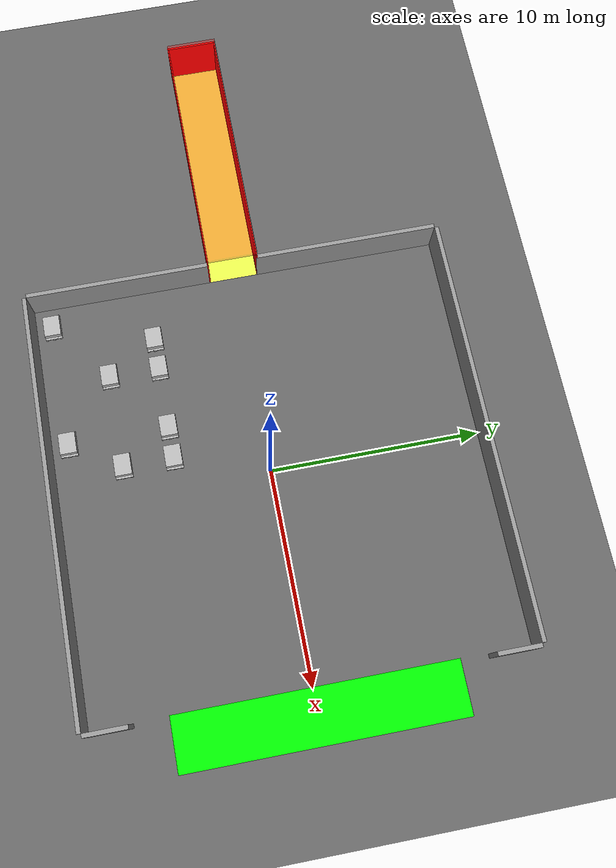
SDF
<sdf version="1.7">
 <world name="factory_w_pallets_ode">
  <atmosphere type="adiabatic"/>
  <gravity>0 0 -9.8</gravity>
  <magnetic_field>6e-06 2.3e-05 -4.2e-05</magnetic_field>
  <scene>
   <ambient>0.4 0.4 0.4 1</ambient>
   <background>0.7 0.7 0.7 1</background>
   <shadows>false</shadows>
   <grid>true</grid>
   <origin_visual>true</origin_visual>
  </scene>
  <physics name="ode_physics" default="true" type="ode">
   <max_step_size>0.004</max_step_size>
   <real_time_update_rate>250</real_time_update_rate>
   <real_time_factor>1.0</real_time_factor>
   <ode>
    <solver><type>quick</type><iters>20</iters><sor>1.0</sor></solver>
    <constraints>
     <cfm>0.0</cfm>
     <erp>0.2</erp>
     <contact_max_correcting_vel>100.0</contact_max_correcting_vel>
     <contact_surface_layer>0.0</contact_surface_layer>
    </constraints>
   </ode>
  </physics>
  <plugin filename="gz-sim-contact-system" name="gz::sim::systems::Contact"/>
  <plugin filename="gz-sim-imu-system" name="gz::sim::systems::Imu"/>
  <plugin filename="gz-sim-physics-system" name="gz::sim::systems::Physics">
   <engine><filename>gz-physics6-ode-plugin</filename></engine>
  </plugin>
  <plugin filename="gz-sim-scene-broadcaster-system" name="gz::sim::systems::SceneBroadcaster"/>
  <plugin filename="gz-sim-user-commands-system" name="gz::sim::systems::UserCommands"/>
  <plugin filename="gz-sim-sensors-system" name="gz::sim::systems::Sensors">
   <render_engine>ogre2</render_engine>
  </plugin>
  <light name="sun" type="directional">
   <pose>0 0 10 0 -0.5 0</pose>
   <diffuse>0.8 0.8 0.8 1</diffuse>
   <specular>0.2 0.2 0.2 1</specular>
   <attenuation>
    <range>1000</range>
    <constant>0.9</constant>
    <linear>0.01</linear>
    <quadratic>0.001</quadratic>
   </attenuation>
   <direction>-0.5 0.1 -0.9</direction>
  </light>
  <model name="ground_plane">
   <static>true</static>
   <link name="link">
    <visual name="visual">
     <geometry><plane><normal>0 0 1</normal><size>100 100</size></plane></geometry>
     <material>
      <ambient>0.4 0.4 0.4 1</ambient>
      <diffuse>0.4 0.4 0.4 1</diffuse>
      <specular>0.05 0.05 0.05 1</specular>
     </material>
     <cast_shadows>0</cast_shadows>
    </visual>
    <collision name="collision">
     <geometry><plane><normal>0 0 1</normal><size>100 100</size></plane></geometry>
    </collision>
   </link>
  </model>
  <model name="wall_up">
   <static>true</static>
   <link name="link">
    <visual name="visual">
     <geometry><box><size>20 0.20 2</size></box></geometry>
     <pose>0 0 1 0 0 0</pose>
     <material><ambient>0.6 0.6 0.6 1</ambient><diffuse>0.6 0.6 0.6 1</diffuse></material>
    </visual>
    <collision name="collision">
     <geometry><box><size>20 0.20 2</size></box></geometry>
     <pose>0 0 1 0 0 0</pose>
    </collision>
   </link>
   <pose relative_to="ground_plane">0 10.1 0 0 0 0</pose>
  </model>
  <model name="wall_down">
   <static>true</static>
   <link name="link">
    <visual name="visual">
     <geometry><box><size>20 0.20 2</size></box></geometry>
     <pose>0 0 1 0 0 0</pose>
     <material><ambient>0.6 0.6 0.6 1</ambient><diffuse>0.6 0.6 0.6 1</diffuse></material>
    </visual>
    <collision name="collision">
     <geometry><box><size>20 0.20 2</size></box></geometry>
     <pose>0 0 1 0 0 0</pose>
    </collision>
   </link>
   <pose relative_to="ground_plane">0 -10.1 0 0 0 0</pose>
  </model>
  <model name="wall_left_up">
   <static>true</static>
   <link name="link">
    <visual name="visual">
     <geometry><box><size>8.832 0.2 2</size></box></geometry>
     <pose>0 0 1 0 0 0</pose>
     <material><ambient>0.6 0.6 0.6 1</ambient><diffuse>0.6 0.6 0.6 1</diffuse></material>
    </visual>
    <collision name="collision">
     <geometry><box><size>8.832 0.2 2</size></box></geometry>
     <pose>0 0 1 0 0 0</pose>
    </collision>
   </link>
   <pose relative_to="ground_plane">-10.1 5.584 0 0 0 1.5708</pose>
  </model>
  <model name="wall_left_down">
   <static>true</static>
   <link name="link">
    <visual name="visual">
     <geometry><box><size>8.832 0.20 2</size></box></geometry>
     <pose>0 0 1 0 0 0</pose>
     <material><ambient>0.6 0.6 0.6 1</ambient><diffuse>0.6 0.6 0.6 1</diffuse></material>
    </visual>
    <collision name="collision">
     <geometry><box><size>8.832 0.20 2</size></box></geometry>
     <pose>0 0 1 0 0 0</pose>
    </collision>
   </link>
   <pose relative_to="ground_plane">-10.1 -5.584 0 0 0 1.5708</pose>
  </model>
  <model name="wall_right_up">
   <static>true</static>
   <link name="link">
    <visual name="visual">
     <geometry><box><size>2 0.20 2</size></box></geometry>
     <pose>0 0 1 0 0 0</pose>
     <material><ambient>0.6 0.6 0.6 1</ambient><diffuse>0.6 0.6 0.6 1</diffuse></material>
    </visual>
    <collision name="collision">
     <geometry><box><size>2 0.20 2</size></box></geometry>
     <pose>0 0 1 0 0 0</pose>
    </collision>
   </link>
   <pose relative_to="ground_plane">10.1 9 0 0 0 1.5708</pose>
  </model>
  <model name="wall_right_down">
   <static>true</static>
   <link name="link">
    <visual name="visual">
     <geometry><box><size>2 0.20 2</size></box></geometry>
     <pose>0 0 1 0 0 0</pose>
     <material><ambient>0.6 0.6 0.6 1</ambient><diffuse>0.6 0.6 0.6 1</diffuse></material>
    </visual>
    <collision name="collision">
     <geometry><box><size>2 0.20 2</size></box></geometry>
     <pose>0 0 1 0 0 0</pose>
    </collision>
   </link>
   <pose relative_to="ground_plane">10.1 -9 0 0 0 1.5708</pose>
  </model>
  <include>
   <uri>model://std_cargo_container_40ft</uri>
   <pose relative_to="ground_plane">-16.095 0 0 0 0 3.141592654</pose>
  </include>
  <include>
   <uri>model://std_cargo_container_40ft_right_side_removed_on_wheels</uri>
   <pose relative_to="ground_plane">11.168 0 0 0 0 -1.5708</pose>
  </include>
  <include>
   <uri>model://euro_pallet_w_boxes</uri>
   <pose relative_to="ground_plane">-9 -9.2 0 0 0 0</pose>
   <name>pallet_w_boxes_1_1</name>
  </include>
  <include>
   <uri>model://euro_pallet_w_boxes</uri>
   <pose relative_to="ground_plane">-3 -9.2 0 0 0 0</pose>
   <name>pallet_w_boxes_5_1</name>
  </include>
  <include>
   <uri>model://euro_pallet_w_boxes</uri>
   <pose relative_to="ground_plane">-6 -6.8 0 0 0 0</pose>
   <name>pallet_w_boxes_3_2</name>
  </include>
  <include>
   <uri>model://euro_pallet_w_boxes</uri>
   <pose relative_to="ground_plane">-1.5 -6.8 0 0 0 0</pose>
   <name>pallet_w_boxes_6_2</name>
  </include>
  <include>
   <uri>model://euro_pallet_w_boxes</uri>
   <pose relative_to="ground_plane">-7.5 -4.4 0 0 0 0</pose>
   <name>pallet_w_stacked_2_3</name>
  </include>
  <include>
   <uri>model://euro_pallet_w_boxes</uri>
   <pose relative_to="ground_plane">-6 -4.4 0 0 0 0</pose>
   <name>pallet_w_boxes_3_3</name>
  </include>
  <include>
   <uri>model://euro_pallet_w_boxes</uri>
   <pose relative_to="ground_plane">-3 -4.4 0 0 0 0</pose>
   <name>pallet_w_boxes_5_3</name>
  </include>
  <include>
   <uri>model://euro_pallet_w_boxes</uri>
   <pose relative_to="ground_plane">-1.5 -4.4 0 0 0 0</pose>
   <name>pallet_w_boxes_6_3</name>
  </include>
 </world>
</sdf>

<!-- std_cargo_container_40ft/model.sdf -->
<sdf version="1.7">
    <model name="std_cargo_container_40ft" canonical_link="container_link" placement_frame="container_link">
        <static>false</static>
        <self_collide>false</self_collide>

        <!--
        The container_link is at the center of the bottom face of the container.
        -->
        <link name="container_link">
            <visual name="floor_visual">
                <geometry>
                    <box>
                        <!--
                        sx = size_x_outer = 12.19 m
                        sy = size_y_outer = 2.44 m
                        sz = 0.005 m
                        -->
                        <size>12.19 2.44 0.005</size>
                    </box>
                </geometry>
                <!--
                pz = sz * 0.5 = 0.005 * 0.5 = 0.0025 m
                -->
                <pose>0 0 0.0025 0 0 0</pose>
                <material>
                    <ambient>0.9 1.0 0.3 1</ambient>
                    <diffuse>0.9 1.0 0.3 1</diffuse>
                    <specular>0.3 0.3 0.1 1</specular>
                </material>
            </visual>

            <visual name="left_wall_visual">
                <geometry>
                    <box>
                        <!--
                        sx = size_x_outer = 12.19 m
                        sy = diff_y * 0.5 = 0.11 * 0.5 = 0.055 m
                        sz = size_z_inner = 2.38 m
                        -->
                        <size>12.19 0.055 2.38</size>
                    </box>
                </geometry>
                <pose>0 1.1925 1.195 0 0 0</pose>
                <material>
                    <ambient>1 0 0 1</ambient>
                    <diffuse>1 0 0 1</diffuse>
                    <specular>0.2 0.2 0.2 1</specular>
                </material>
            </visual>

            <visual name="right_wall_visual">
                <geometry>
                    <!--
                    sx = size_x_outer = 12.19 m
                    sy = diff_y * 0.5 = 0.11 * 0.5 = 0.055 m
                    sz = size_z_inner = 2.38 m
                    -->
                    <box>
                        <size>12.19 0.055 2.38</size>
                    </box>
                </geometry>
                <pose>0 -1.1925 1.195 0 0 0</pose>
                <material>
                    <ambient>1 0 0 1</ambient>
                    <diffuse>1 0 0 1</diffuse>
                    <specular>0.2 0.2 0.2 1</specular>
                </material>
            </visual>

            <visual name="ceiling_visual">
                <geometry>
                    <!--
                    sx = size_x_outer = 12.19 m
                    sy = size_y_outer = 2.44 m
                    sz = diff_z - 0.005 = 0.21 - 0.005 = 0.205 m
                    -->
                    <box>
                        <size>12.19 2.44 0.205</size>
                    </box>
                </geometry>
                <!--
                pz = sz_floor + sz_wall + (sz * 0.5)  =
                   = 0.005 + 2.38 + (0.205 * 0.5) = 2.4875
                -->
                <pose>0 0 2.4875 0 0 0</pose>
                <material>
                    <ambient>1 0 0 0.3</ambient>
                    <diffuse>1 0 0 0.3</diffuse>
                    <specular>0.2 0.2 0.2 1</specular>
                </material>
            </visual>

            <visual name="front_wall_visual">
                <geometry>
                    <!--
                    sx = diff_x * 0.5 = 0.18 * 0.5 = 0.09 m
                    sy = size_y_inner = 2.33 m
                    sz = size_z_inner = 2.38 m
                    -->
                    <box>
                        <size>0.09 2.33 2.38</size>
                    </box>
                </geometry>
                <pose>6.050 0 1.195 0 0 0</pose>
                <material>
                    <ambient>1 0 0 1</ambient>
                    <diffuse>1 0 0 1</diffuse>
                    <specular>0.2 0.2 0.2 1</specular>
                </material>
            </visual>

            <collision name="floor_collision">
                <geometry>
                    <box>
                        <size>12.19 2.44 0.005</size>
                    </box>
                </geometry>
                <pose>0 0 0.0025 0 0 0</pose>
            </collision>

            <collision name="left_wall_collision">
                <geometry>
                    <box>
                        <size>12.19 0.055 2.38</size>
                    </box>
                </geometry>
                <pose>0 1.1925 1.195 0 0 0</pose>
            </collision>

            <collision name="right_wall_collision">
                <geometry>
                    <box>
                        <size>12.19 0.055 2.38</size>
                    </box>
                </geometry>
                <pose>0 -1.1925 1.195 0 0 0</pose>
            </collision>

            <collision name="ceiling_collision">
                <geometry>
                    <box>
                        <size>12.19 2.44 0.205</size>
                    </box>
                </geometry>
                <pose>0 0 2.4875 0 0 0</pose>
            </collision>

            <collision name="front_wall_collision">
                <geometry>
                    <box>
                        <size>0.09 2.33 2.38</size>
                    </box>
                </geometry>
                <pose>6.050 0 1.195 0 0 0</pose>
            </collision>

            <inertial>
                <mass>3701.0</mass>
                <inertia>
                    <ixx>3905.079308</ixx>
                    <ixy>0.0</ixy>
                    <ixz>0.0</ixz>
                    <iyy>47898.403683</iyy>
                    <iyz>0.0</iyz>
                    <izz>47665.703308</izz>
                </inertia>
                <pose>0 0 1.195 0 0 0</pose>
            </inertial>
            <pose>0 0 0 0 0 0</pose>
        </link>
    </model>
</sdf>

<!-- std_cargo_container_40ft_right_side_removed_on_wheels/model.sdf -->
<sdf version="1.7">
    <model name="std_cargo_container_40ft_right_side_removed_on_wheels" canonical_link="footprint_link" placement_frame="footprint_link">
        <static>false</static>
        <self_collide>false</self_collide>

        <link name="footprint_link">
            <inertial>
                <mass>0.001</mass>
                <inertia>
                    <ixx>1e-6</ixx>
                    <ixy>0</ixy>
                    <ixz>0</ixz>
                    <iyy>1e-6</iyy>
                    <iyz>0</iyz>
                    <izz>1e-6</izz>
                </inertia>
            </inertial>
        </link>

        <!--
        The link for the payload_chassis is at the center of the bottom face of the payload chassis.
        -->
        <link name="payload_chassis_link">
            <visual name="visual">
                <geometry>
                    <box>
                        <size>12.19 2.336 0.17</size>
                    </box>
                </geometry>
                <pose>0 0 0.085 0 0 0</pose>
                <material>
                    <ambient>0 0 0 1</ambient>
                    <diffuse>0 0 0 1</diffuse>
                    <specular>0.1 0.1 0.1 1</specular>
                </material>
            </visual>

            <collision name="collision">
                <geometry>
                    <box>
                        <size>12.19 2.336 0.17</size>
                    </box>
                </geometry>
                <pose>0 0 0.085 0 0 0</pose>
            </collision>

            <inertial>
                <mass>2800.0</mass>
                <inertia>
                    <ixx>1279.685</ixx>
                    <ixy>0.0</ixy>
                    <ixz>0.0</ixz>
                    <iyy>34678.405</iyy>
                    <iyz>0.0</iyz>
                    <izz>35945.605</izz>
                </inertia>
                <pose>0 0 0.085 0 0 0</pose>
            </inertial>

            <!--
            z = 2 * wheel_radius = 2 * 0.5 = 1 m
            -->
            <pose relative_to="footprint_link">0 0 1.0 0 0 0</pose>
        </link>

        <joint name="payload_chassis_frame_joint" type="fixed">
            <parent>footprint_link</parent>
            <child>payload_chassis_link</child>
            <pose relative_to="footprint_link">0 0 1.0 0 0 0</pose>
        </joint>

        <!--
        The container_link is at the center of the bottom face of the container.
        -->
        <link name="container_link">
            <visual name="floor_visual">
                <geometry>
                    <box>
                        <size>12.19 2.336 0.03</size>
                    </box>
                </geometry>
                <pose>0 0 0.015 0 0 0</pose>
                <material>
                    <ambient>0.9 1.0 0.3 1</ambient>
                    <diffuse>0.9 1.0 0.3 1</diffuse>
                    <specular>0.3 0.3 0.1 1</specular>
                </material>
            </visual>

            <visual name="left_wall_visual">
                <geometry>
                    <box>
                        <size>12.19 0.003 2.38</size>
                    </box>
                </geometry>
                <pose>0 1.1665 1.22 0 0 0</pose>
                <material>
                    <ambient>0 1 0 1</ambient>
                    <diffuse>0 1 0 1</diffuse>
                    <specular>0.2 0.2 0.2 1</specular>
                </material>
            </visual>

            <visual name="ceiling_visual">
                <geometry>
                    <box>
                        <size>12.19 2.336 0.003</size>
                    </box>
                </geometry>
                <pose>0 0 2.4115 0 0 0</pose>
                <material>
                    <ambient>0 1 0 1</ambient>
                    <diffuse>0 1 0 1</diffuse>
                    <specular>0.2 0.2 0.2 1</specular>
                </material>
            </visual>

            <visual name="front_wall_visual">
                <geometry>
                    <box>
                        <size>0.09 2.33 2.38</size>
                    </box>
                </geometry>
                <pose>6.050 0 1.22 0 0 0</pose>
                <material>
                    <ambient>0 1 0 1</ambient>
                    <diffuse>0 1 0 1</diffuse>
                    <specular>0.2 0.2 0.2 1</specular>
                </material>
            </visual>

            <visual name="back_wall_visual">
                <geometry>
                    <box>
                        <size>0.09 2.33 2.38</size>
                    </box>
                </geometry>
                <pose>-6.050 0 1.22 0 0 0</pose>
                <material>
                    <ambient>0 1 0 1</ambient>
                    <diffuse>0 1 0 1</diffuse>
                    <specular>0.2 0.2 0.2 1</specular>
                </material>
            </visual>

            <collision name="floor_collision">
                <geometry>
                    <box>
                        <size>12.19 2.336 0.03</size>
                    </box>
                </geometry>
                <pose>0 0 0.015 0 0 0</pose>
            </collision>

            <collision name="left_wall_collision">
                <geometry>
                    <box>
                        <size>12.19 0.003 2.38</size>
                    </box>
                </geometry>
                <pose>0 1.1665 1.22 0 0 0</pose>
            </collision>

            <collision name="ceiling_collision">
                <geometry>
                    <box>
                        <size>12.19 2.336 0.003</size>
                    </box>
                </geometry>
                <pose>0 0 2.4115 0 0 0</pose>
            </collision>

            <collision name="front_wall_collision">
                <geometry>
                    <box>
                        <size>0.09 2.33 2.38</size>
                    </box>
                </geometry>
                <pose>6.050 0 1.22 0 0 0</pose>
            </collision>

            <collision name="back_wall_collision">
                <geometry>
                    <box>
                        <size>0.09 2.33 2.38</size>
                    </box>
                </geometry>
                <pose>-6.050 0 1.22 0 0 0</pose>
            </collision>

            <inertial>
                <mass>3701.0</mass>
                <inertia>
                    <ixx>3416.627</ixx>
                    <ixy>0.0</ixy>
                    <ixz>0.0</ixz>
                    <iyy>1750.107</iyy>
                    <iyz>0.0</iyz>
                    <izz>1676.303</izz>
                </inertia>
                <pose>0 0 1.2065 0 0 0</pose>
            </inertial>
            <pose relative_to="payload_chassis_link">0 0 0.17 0 0 0</pose>
        </link>

        <joint name="container_frame_joint" type="fixed">
            <parent>payload_chassis_link</parent>
            <child>container_link</child>
            <pose relative_to="payload_chassis_link">0 0 0.17 0 0 0</pose>
        </joint>

        <link name="front_left_landing_leg_link">
            <visual name="visual">
                <geometry>
                    <cylinder>
                        <radius>0.1</radius>
                        <length>1</length>
                    </cylinder>
                </geometry>
                <material>
                    <ambient>0.15 0.12 0.10 1</ambient>
                    <diffuse>0.15 0.12 0.10 1</diffuse>
                    <specular>0.1 0.1 0.1 1</specular>
                </material>
                <pose>0 0 0.5 0 0 0</pose>
            </visual>

            <collision name="collision">
                <geometry>
                    <cylinder>
                        <radius>0.1</radius>
                        <length>1</length>
                    </cylinder>
                </geometry>
                <pose>0 0 0.5 0 0 0</pose>
            </collision>

            <inertial>
                <mass>120.0</mass>
                <inertia>
                    <ixx>40.3</ixx>
                    <ixy>0.0</ixy>
                    <ixz>0.0</ixz>
                    <iyy>40.3</iyy>
                    <iyz>0.0</iyz>
                    <izz>0.6</izz>
                </inertia>
                <pose>0 0 0.5 0 0 0</pose>
            </inertial>
            <pose relative_to="payload_chassis_link">3.995 0.568 -1.0 0 0 0</pose>
        </link>

        <joint name="front_left_landing_leg_joint" type="fixed">
            <parent>payload_chassis_link</parent>
            <child>front_left_landing_leg_link</child>
            <pose relative_to="payload_chassis_link">3.995 0.568 -1.0 0 0 0</pose>
        </joint>

        <link name="front_right_landing_leg_link">
            <visual name="visual">
                <geometry>
                    <cylinder>
                        <radius>0.1</radius>
                        <length>1</length>
                    </cylinder>
                </geometry>
                <material>
                    <ambient>0.15 0.12 0.10 1</ambient>
                    <diffuse>0.15 0.12 0.10 1</diffuse>
                    <specular>0.1 0.1 0.1 1</specular>
                </material>
                <pose>0 0 0.5 0 0 0</pose>
            </visual>

            <collision name="collision">
                <geometry>
                    <cylinder>
                        <radius>0.1</radius>
                        <length>1</length>
                    </cylinder>
                </geometry>
                <pose>0 0 0.5 0 0 0</pose>
            </collision>

            <inertial>
                <mass>120.0</mass>
                <inertia>
                    <ixx>40.3</ixx>
                    <ixy>0.0</ixy>
                    <ixz>0.0</ixz>
                    <iyy>40.3</iyy>
                    <iyz>0.0</iyz>
                    <izz>0.6</izz>
                </inertia>
                <pose>0 0 0.5 0 0 0</pose>
            </inertial>
            <pose relative_to="payload_chassis_link">3.995 -0.568 -1.0 0 0 0</pose>
        </link>

        <joint name="front_right_landing_leg_joint" type="fixed">
            <parent>payload_chassis_link</parent>
            <child>front_right_landing_leg_link</child>
            <pose relative_to="payload_chassis_link">3.995 -0.568 -1.0 0 0 0</pose>
        </joint>

        <link name="rear_left_wheel_link">
            <visual name="visual">
                <geometry>
                    <cylinder>
                        <radius>0.50</radius>
                        <length>0.38</length>
                    </cylinder>
                </geometry>
                <material>
                    <ambient>0 0 0 1</ambient>
                    <diffuse>0 0 0 1</diffuse>
                    <specular>0.1 0.1 0.1 1</specular>
                </material>
                <pose>0 0 0 1.5708 0 0</pose>
            </visual>

            <collision name="collision">
                <geometry>
                    <cylinder>
                        <radius>0.50</radius>
                        <length>0.38</length>
                    </cylinder>
                </geometry>
                <pose>0 0 0 1.5708 0 0</pose>
            </collision>

            <inertial>
                <mass>120.0</mass>
                <inertia>
                    <ixx>8.944</ixx>
                    <ixy>0.0</ixy>
                    <ixz>0.0</ixz>
                    <iyy>15.0</iyy>
                    <iyz>0.0</iyz>
                    <izz>8.944</izz>
                </inertia>
            </inertial>

            <pose relative_to="payload_chassis_link">-4.595 0.978 -0.5 0 0 0</pose>
        </link>

        <joint name="rear_left_wheel_joint" type="fixed">
            <parent>payload_chassis_link</parent>
            <child>rear_left_wheel_link</child>
            <pose relative_to="payload_chassis_link">-4.595 0.978 -0.5 0 0 0</pose>
        </joint>

        <link name="rear_right_wheel_link">
            <visual name="visual">
                <geometry>
                    <cylinder>
                        <radius>0.50</radius>
                        <length>0.38</length>
                    </cylinder>
                </geometry>
                <material>
                    <ambient>0 0 0 1</ambient>
                    <diffuse>0 0 0 1</diffuse>
                    <specular>0.1 0.1 0.1 1</specular>
                </material>
                <pose>0 0 0 1.5708 0 0</pose>
            </visual>

            <collision name="collision">
                <geometry>
                    <cylinder>
                        <radius>0.50</radius>
                        <length>0.38</length>
                    </cylinder>
                </geometry>
                <pose>0 0 0 1.5708 0 0</pose>
            </collision>

            <inertial>
                <mass>120.0</mass>
                <inertia>
                    <ixx>8.944</ixx>
                    <ixy>0.0</ixy>
                    <ixz>0.0</ixz>
                    <iyy>15.0</iyy>
                    <iyz>0.0</iyz>
                    <izz>8.944</izz>
                </inertia>
            </inertial>

            <pose relative_to="payload_chassis_link">-4.595 -0.978 -0.5 0 0 0</pose>
        </link>

        <joint name="rear_right_wheel_joint" type="fixed">
            <parent>payload_chassis_link</parent>
            <child>rear_right_wheel_link</child>
            <pose relative_to="payload_chassis_link">-4.595 -0.978 -0.5 0 0 0</pose>
        </joint>
    </model>
</sdf>

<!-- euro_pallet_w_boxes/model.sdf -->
<sdf version="1.7">
    <model name="euro_pallet_w_boxes" canonical_link="link" placement_frame="link">
        <static>false</static>

        <link name="link">
            <!--
            Avoid self-collision between the five collision geometries
            inside this link. Default is false, but set explicitly
            to document the intention.
            -->
            <self_collide>false</self_collide>

            <visual name="visual">
                <geometry>
                    <mesh>
                        <uri>
                            model://euro_pallet_w_boxes/meshes/euro_pallet_w_boxes.dae</uri>
                        <scale>1 1 1</scale>
                    </mesh>
                </geometry>
                <!--
                Link of the mesh is at the center of the bottom face of the pallet.
                -->
                <pose>0 0 0 0 0 0</pose>
            </visual>

            <collision name="pallet_top_collision">
                <geometry>
                    <box>
                        <size>1.20 0.8 0.044</size>
                    </box>
                </geometry>
                <pose>0 0 0.122 0 0 0</pose>
            </collision>

            <collision name="pallet_center_collision">
                <geometry>
                    <box>
                        <size>1.20 0.145 0.10</size>
                    </box>
                </geometry>
                <pose>0 0 0.05 0 0 0</pose>
            </collision>

            <collision name="pallet_left_collision">
                <geometry>
                    <box>
                        <size>1.20 0.10 0.10</size>
                    </box>
                </geometry>
                <pose>0 0.35 0.05 0 0 0</pose>
            </collision>

            <collision name="pallet_right_collision">
                <geometry>
                    <box>
                        <size>1.20 0.10 0.10</size>
                    </box>
                </geometry>
                <pose>0 -0.35 0.05 0 0 0</pose>
            </collision>

            <collision name="boxes_collision">
                <geometry>
                    <box>
                        <size>1.20 0.8 0.3</size>
                    </box>
                </geometry>
                <!--
                z = euro_pallet.size_z + box.size_z/2 = 0.144 + 0.3/2 = 0.144 + 0.15 = 0.294 m
                -->
                <pose>0 0 0.644 0 0 0</pose>
            </collision>

            <!-- Mass and inertia for the combined pallet + boxes -->

            <inertial>
                <mass>0.1</mass>
                <inertia>
                    <ixx>0.006976133</ixx>
                    <ixy>0.000000000</ixy>
                    <ixz>0.000000000</ixz>
                    <iyy>0.013642800</iyy>
                    <iyz>0.000000000</iyz>
                    <izz>0.017333333</izz>
                </inertia>
                <!--
                z = whole_body.size_z/2 = (0.144 + 0.3)/2 = 0.222 m.
                -->
                <pose>0 0 0.222 0 0 0</pose>
            </inertial>
        </link>

        <!-- Optional pose-publisher plugin (disabled) -->
    </model>
</sdf>
